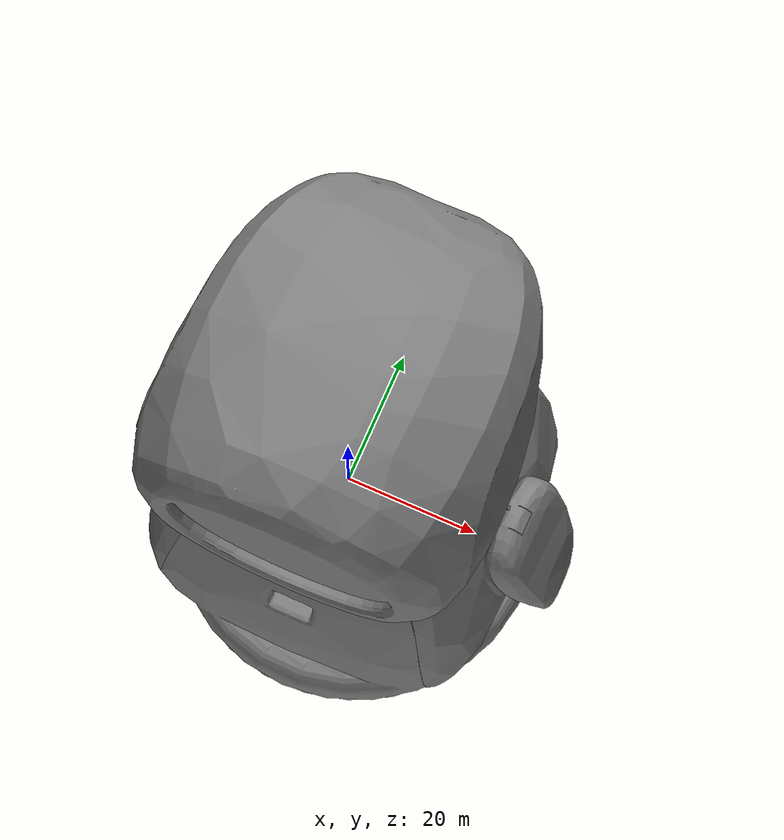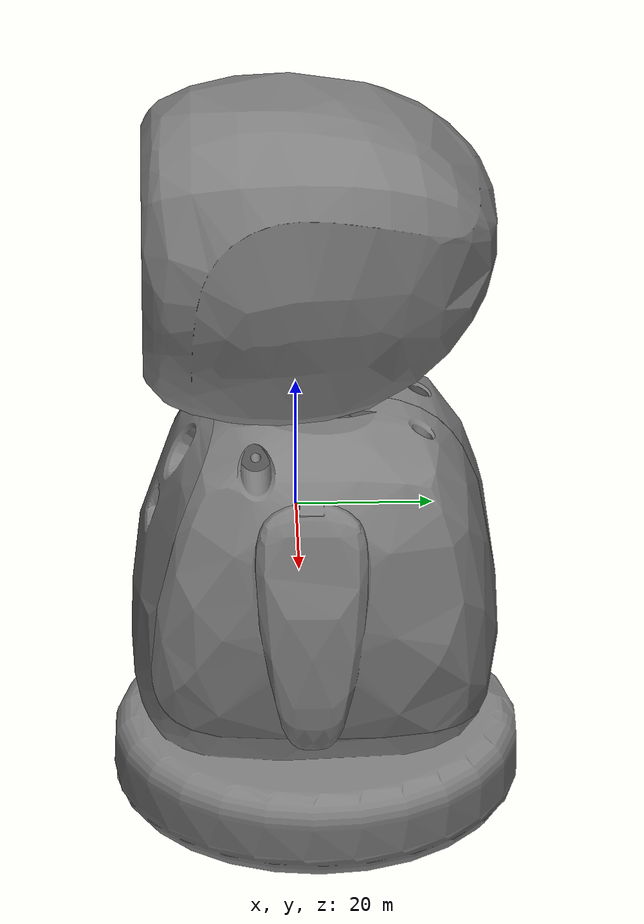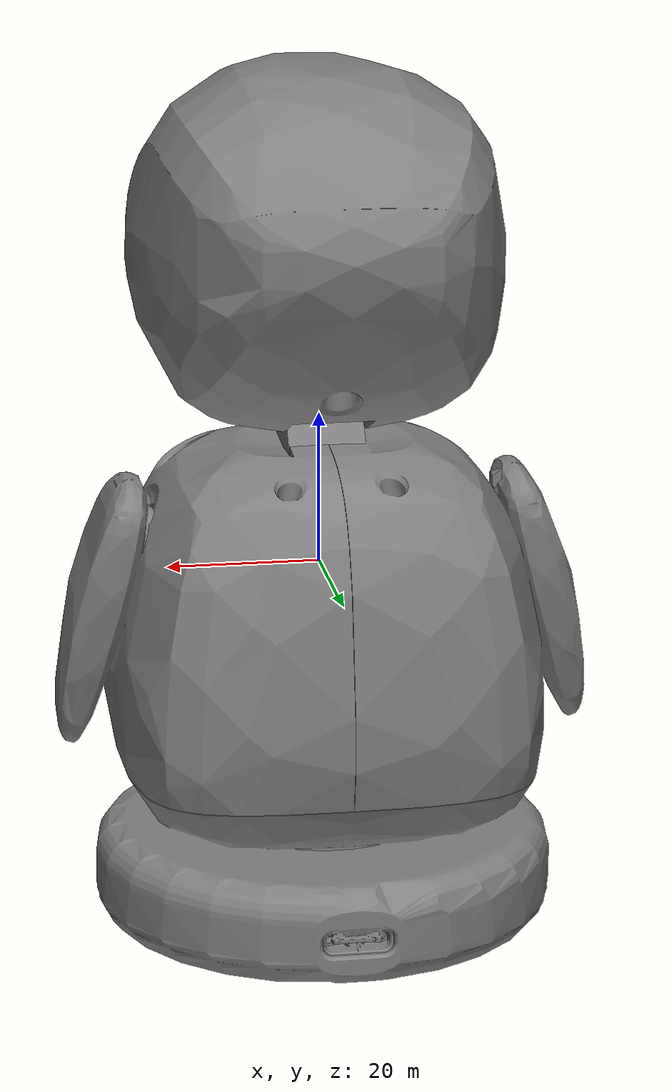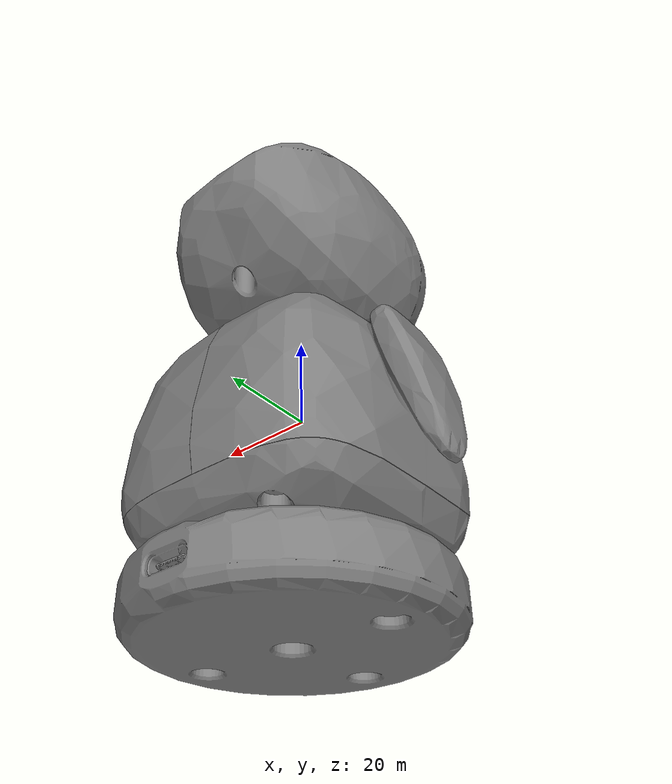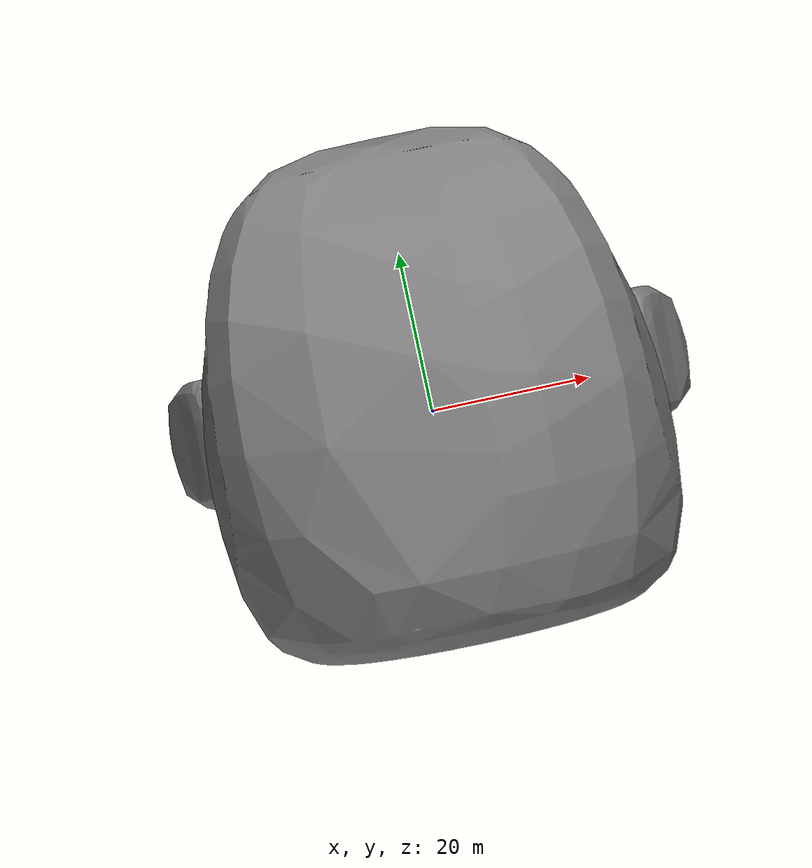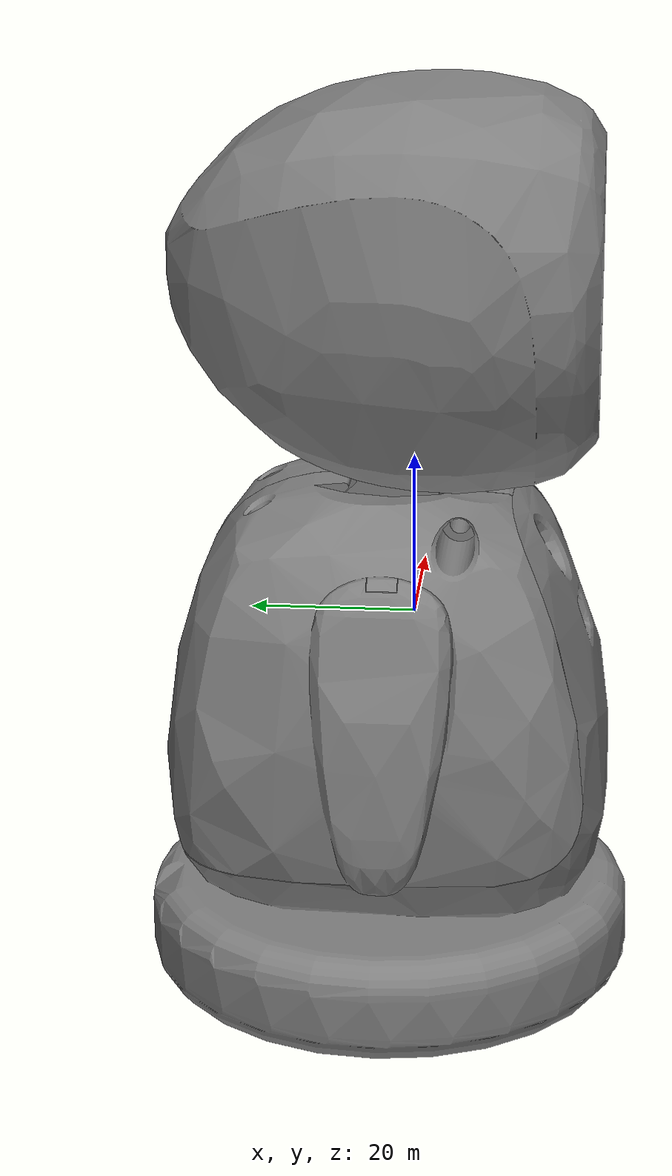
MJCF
<!--
  ElectronBot 场景 — include mesh 版
  生成时间: 2026-07-06T18:34:14
-->
<mujoco model="electronbot_scene_mesh">
  <include file="electronbot_mesh.xml" />
  <worldbody>
    <light name="top" pos="0 0 1" dir="0 0 -1" directional="true"/>
    <camera name="view" pos="0.3 0 0.2" xyaxes="-1 0 0 0 0 1" fovy="60"/>
  </worldbody>
</mujoco>
